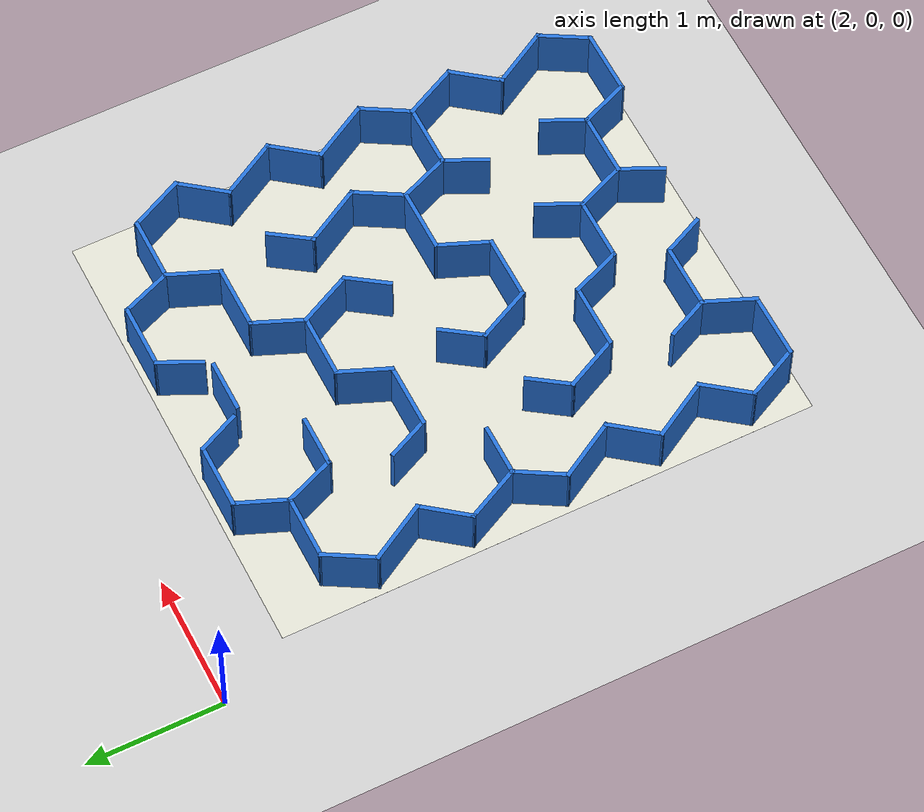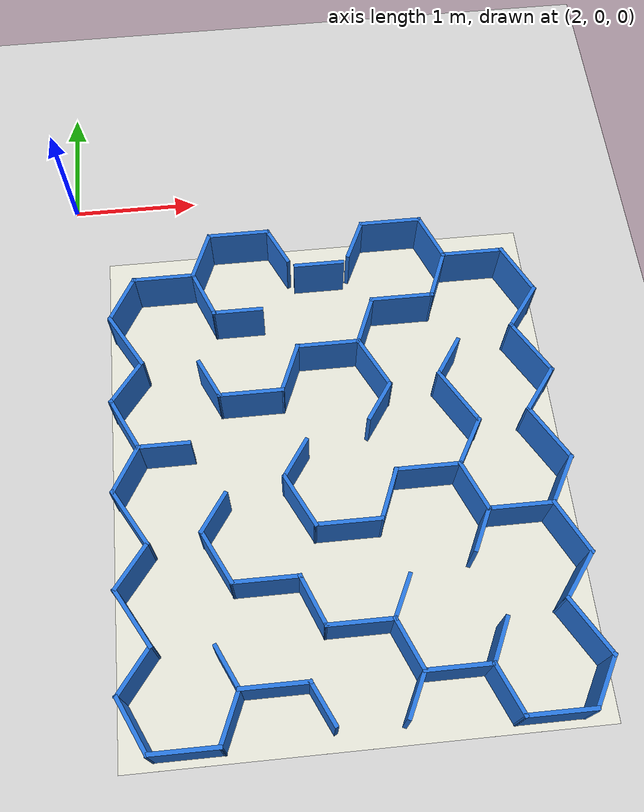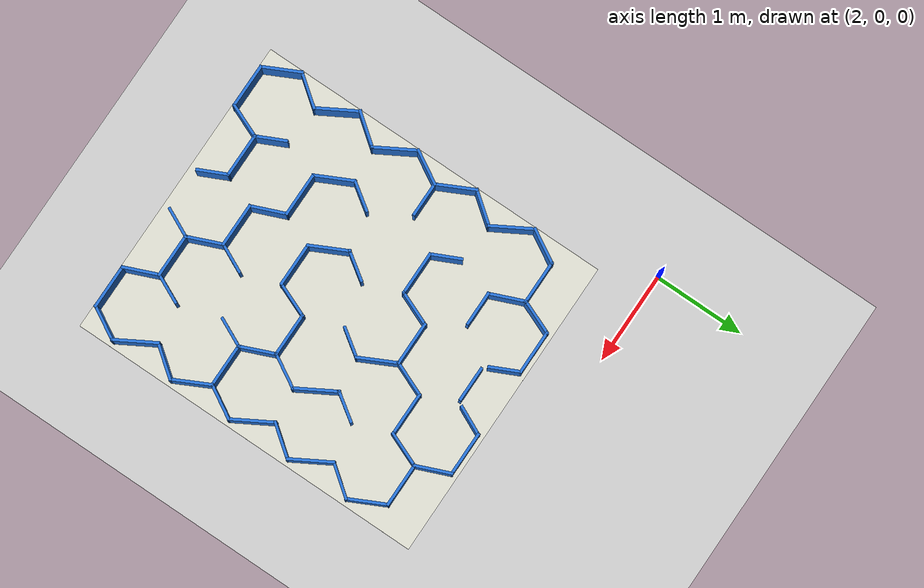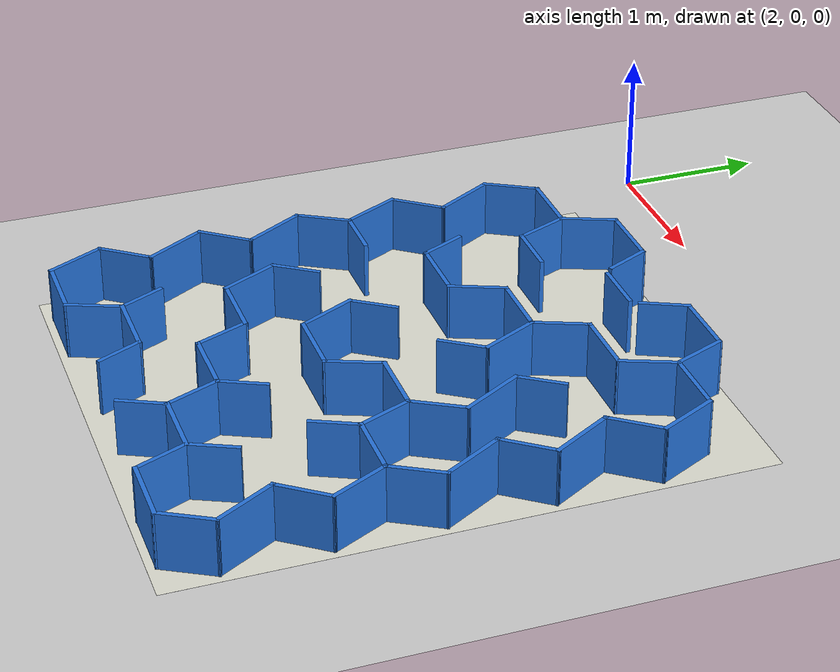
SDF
<?xml version="1.0" ?>
<sdf version="1.10">
<world name="nhom8_maze_sigma_5">
  <physics name="8ms" type="ignored">
    <max_step_size>0.008</max_step_size>
    <real_time_factor>1.0</real_time_factor>
  </physics>
  <plugin filename="gz-sim-physics-system"   name="gz::sim::systems::Physics"/>
  <plugin filename="gz-sim-user-commands-system" name="gz::sim::systems::UserCommands"/>
  <plugin filename="gz-sim-scene-broadcaster-system" name="gz::sim::systems::SceneBroadcaster"/>
  <plugin filename="gz-sim-sensors-system" name="gz::sim::systems::Sensors">
    <render_engine>ogre2</render_engine>
  </plugin>

  <light type="directional" name="sun">
    <cast_shadows>true</cast_shadows>
    <pose>0 0 10 0 0 0</pose>
    <diffuse>1 1 1 1</diffuse>
    <specular>0.5 0.5 0.5 1</specular>
    <attenuation><range>1000</range><constant>0.9</constant>
      <linear>0.01</linear><quadratic>0.001</quadratic></attenuation>
    <direction>-0.5 0.1 -0.9</direction>
  </light>

  <model name="ground_plane">
    <static>true</static>
    <link name="link">
      <collision name="collision">
        <geometry><plane><normal>0 0 1</normal><size>50.0 50.0</size></plane></geometry>
        <surface><friction><ode><mu>40</mu></ode></friction></surface>
      </collision>
      <visual name="visual">
        <geometry><plane><normal>0 0 1</normal><size>50.0 50.0</size></plane></geometry>
        <material>
          <ambient>0.8 0.8 0.8 1</ambient><diffuse>0.8 0.8 0.8 1</diffuse>
          <specular>0.8 0.8 0.8 1</specular>
        </material>
      </visual>
    </link>
  </model>

  <!--  MAZE sigma_5 (family sigma)                -->
  <!--  walls: 69   wall bbox (local): (-1.6466, -1.9401, 1.6477, 1.9489)   -->
  <!--  openings: entrance=north@(0.003,1.594) hw=0.168  exit=south@(0.003,-1.937) hw=0.168   -->
  <!--  start (local): (0.0034, 1.2599) yaw=-1.5722 rad  -->
  <!--  placement center: (3.9650, -2.5350)   -->

    <model name="wall_000">
      <static>true</static>
      <pose>3.355700 -0.600000 0.2000 0 0 0.000000</pose>
      <link name="link">
        <collision name="col">
          <geometry><box><size>0.4972 0.0300 0.4000</size></box></geometry>
        </collision>
        <visual name="vis">
          <geometry><box><size>0.4972 0.0300 0.4000</size></box></geometry>
          <material><ambient>0.15 0.45 0.85 1</ambient><diffuse>0.15 0.45 0.85 1</diffuse></material>
        </visual>
      </link>
    </model>

    <model name="wall_001">
      <static>true</static>
      <pose>4.574900 -0.600000 0.2000 0 0 0.000000</pose>
      <link name="link">
        <collision name="col">
          <geometry><box><size>0.4964 0.0300 0.4000</size></box></geometry>
        </collision>
        <visual name="vis">
          <geometry><box><size>0.4964 0.0300 0.4000</size></box></geometry>
          <material><ambient>0.15 0.45 0.85 1</ambient><diffuse>0.15 0.45 0.85 1</diffuse></material>
        </visual>
      </link>
    </model>

    <model name="wall_002">
      <static>true</static>
      <pose>2.748250 -0.950200 0.2000 0 0 0.000000</pose>
      <link name="link">
        <collision name="col">
          <geometry><box><size>0.4921 0.0300 0.4000</size></box></geometry>
        </collision>
        <visual name="vis">
          <geometry><box><size>0.4921 0.0300 0.4000</size></box></geometry>
          <material><ambient>0.15 0.45 0.85 1</ambient><diffuse>0.15 0.45 0.85 1</diffuse></material>
        </visual>
      </link>
    </model>

    <model name="wall_003">
      <static>true</static>
      <pose>5.183450 -0.950200 0.2000 0 0 0.000000</pose>
      <link name="link">
        <collision name="col">
          <geometry><box><size>0.4949 0.0300 0.4000</size></box></geometry>
        </collision>
        <visual name="vis">
          <geometry><box><size>0.4949 0.0300 0.4000</size></box></geometry>
          <material><ambient>0.15 0.45 0.85 1</ambient><diffuse>0.15 0.45 0.85 1</diffuse></material>
        </visual>
      </link>
    </model>

    <model name="wall_004">
      <static>true</static>
      <pose>3.304900 -1.302500 0.2000 0 0 0.000000</pose>
      <link name="link">
        <collision name="col">
          <geometry><box><size>0.3920 0.0300 0.4000</size></box></geometry>
        </collision>
        <visual name="vis">
          <geometry><box><size>0.3920 0.0300 0.4000</size></box></geometry>
          <material><ambient>0.15 0.45 0.85 1</ambient><diffuse>0.15 0.45 0.85 1</diffuse></material>
        </visual>
      </link>
    </model>

    <model name="wall_005">
      <static>true</static>
      <pose>4.574550 -1.302500 0.2000 0 0 0.000000</pose>
      <link name="link">
        <collision name="col">
          <geometry><box><size>0.4949 0.0300 0.4000</size></box></geometry>
        </collision>
        <visual name="vis">
          <geometry><box><size>0.4949 0.0300 0.4000</size></box></geometry>
          <material><ambient>0.15 0.45 0.85 1</ambient><diffuse>0.15 0.45 0.85 1</diffuse></material>
        </visual>
      </link>
    </model>

    <model name="wall_006">
      <static>true</static>
      <pose>3.964850 -1.651900 0.2000 0 0 0.000000</pose>
      <link name="link">
        <collision name="col">
          <geometry><box><size>0.4937 0.0300 0.4000</size></box></geometry>
        </collision>
        <visual name="vis">
          <geometry><box><size>0.4937 0.0300 0.4000</size></box></geometry>
          <material><ambient>0.15 0.45 0.85 1</ambient><diffuse>0.15 0.45 0.85 1</diffuse></material>
        </visual>
      </link>
    </model>

    <model name="wall_007">
      <static>true</static>
      <pose>3.355600 -2.002800 0.2000 0 0 0.000000</pose>
      <link name="link">
        <collision name="col">
          <geometry><box><size>0.4956 0.0300 0.4000</size></box></geometry>
        </collision>
        <visual name="vis">
          <geometry><box><size>0.4956 0.0300 0.4000</size></box></geometry>
          <material><ambient>0.15 0.45 0.85 1</ambient><diffuse>0.15 0.45 0.85 1</diffuse></material>
        </visual>
      </link>
    </model>

    <model name="wall_008">
      <static>true</static>
      <pose>2.698800 -2.358000 0.2000 0 0 0.000000</pose>
      <link name="link">
        <collision name="col">
          <geometry><box><size>0.3950 0.0300 0.4000</size></box></geometry>
        </collision>
        <visual name="vis">
          <geometry><box><size>0.3950 0.0300 0.4000</size></box></geometry>
          <material><ambient>0.15 0.45 0.85 1</ambient><diffuse>0.15 0.45 0.85 1</diffuse></material>
        </visual>
      </link>
    </model>

    <model name="wall_009">
      <static>true</static>
      <pose>4.573700 -2.707000 0.2000 0 0 0.000000</pose>
      <link name="link">
        <collision name="col">
          <geometry><box><size>0.4922 0.0300 0.4000</size></box></geometry>
        </collision>
        <visual name="vis">
          <geometry><box><size>0.4922 0.0300 0.4000</size></box></geometry>
          <material><ambient>0.15 0.45 0.85 1</ambient><diffuse>0.15 0.45 0.85 1</diffuse></material>
        </visual>
      </link>
    </model>

    <model name="wall_010">
      <static>true</static>
      <pose>3.965400 -3.059000 0.2000 0 0 0.000000</pose>
      <link name="link">
        <collision name="col">
          <geometry><box><size>0.4952 0.0300 0.4000</size></box></geometry>
        </collision>
        <visual name="vis">
          <geometry><box><size>0.4952 0.0300 0.4000</size></box></geometry>
          <material><ambient>0.15 0.45 0.85 1</ambient><diffuse>0.15 0.45 0.85 1</diffuse></material>
        </visual>
      </link>
    </model>

    <model name="wall_011">
      <static>true</static>
      <pose>5.182700 -3.059000 0.2000 0 0 0.000000</pose>
      <link name="link">
        <collision name="col">
          <geometry><box><size>0.4930 0.0300 0.4000</size></box></geometry>
        </collision>
        <visual name="vis">
          <geometry><box><size>0.4930 0.0300 0.4000</size></box></geometry>
          <material><ambient>0.15 0.45 0.85 1</ambient><diffuse>0.15 0.45 0.85 1</diffuse></material>
        </visual>
      </link>
    </model>

    <model name="wall_012">
      <static>true</static>
      <pose>3.355800 -3.410500 0.2000 0 0 0.000000</pose>
      <link name="link">
        <collision name="col">
          <geometry><box><size>0.4974 0.0300 0.4000</size></box></geometry>
        </collision>
        <visual name="vis">
          <geometry><box><size>0.4974 0.0300 0.4000</size></box></geometry>
          <material><ambient>0.15 0.45 0.85 1</ambient><diffuse>0.15 0.45 0.85 1</diffuse></material>
        </visual>
      </link>
    </model>

    <model name="wall_013">
      <static>true</static>
      <pose>3.964300 -3.760400 0.2000 0 0 0.000000</pose>
      <link name="link">
        <collision name="col">
          <geometry><box><size>0.4942 0.0300 0.4000</size></box></geometry>
        </collision>
        <visual name="vis">
          <geometry><box><size>0.4942 0.0300 0.4000</size></box></geometry>
          <material><ambient>0.15 0.45 0.85 1</ambient><diffuse>0.15 0.45 0.85 1</diffuse></material>
        </visual>
      </link>
    </model>

    <model name="wall_014">
      <static>true</static>
      <pose>3.358400 -4.115400 0.2000 0 0 0.000000</pose>
      <link name="link">
        <collision name="col">
          <geometry><box><size>0.4962 0.0300 0.4000</size></box></geometry>
        </collision>
        <visual name="vis">
          <geometry><box><size>0.4962 0.0300 0.4000</size></box></geometry>
          <material><ambient>0.15 0.45 0.85 1</ambient><diffuse>0.15 0.45 0.85 1</diffuse></material>
        </visual>
      </link>
    </model>

    <model name="wall_015">
      <static>true</static>
      <pose>4.574300 -4.115400 0.2000 0 0 0.000000</pose>
      <link name="link">
        <collision name="col">
          <geometry><box><size>0.4916 0.0300 0.4000</size></box></geometry>
        </collision>
        <visual name="vis">
          <geometry><box><size>0.4916 0.0300 0.4000</size></box></geometry>
          <material><ambient>0.15 0.45 0.85 1</ambient><diffuse>0.15 0.45 0.85 1</diffuse></material>
        </visual>
      </link>
    </model>

    <model name="wall_016">
      <static>true</static>
      <pose>2.747550 -4.461300 0.2000 0 0 0.000000</pose>
      <link name="link">
        <collision name="col">
          <geometry><box><size>0.4991 0.0300 0.4000</size></box></geometry>
        </collision>
        <visual name="vis">
          <geometry><box><size>0.4991 0.0300 0.4000</size></box></geometry>
          <material><ambient>0.15 0.45 0.85 1</ambient><diffuse>0.15 0.45 0.85 1</diffuse></material>
        </visual>
      </link>
    </model>

    <model name="wall_017">
      <static>true</static>
      <pose>5.182700 -4.461300 0.2000 0 0 0.000000</pose>
      <link name="link">
        <collision name="col">
          <geometry><box><size>0.4992 0.0300 0.4000</size></box></geometry>
        </collision>
        <visual name="vis">
          <geometry><box><size>0.4992 0.0300 0.4000</size></box></geometry>
          <material><ambient>0.15 0.45 0.85 1</ambient><diffuse>0.15 0.45 0.85 1</diffuse></material>
        </visual>
      </link>
    </model>

    <model name="wall_018">
      <static>true</static>
      <pose>5.509000 -1.138700 0.2000 0 0 -1.112114</pose>
      <link name="link">
        <collision name="col">
          <geometry><box><size>0.4503 0.0300 0.4000</size></box></geometry>
        </collision>
        <visual name="vis">
          <geometry><box><size>0.4503 0.0300 0.4000</size></box></geometry>
          <material><ambient>0.15 0.45 0.85 1</ambient><diffuse>0.15 0.45 0.85 1</diffuse></material>
        </visual>
      </link>
    </model>

    <model name="wall_019">
      <static>true</static>
      <pose>4.879550 -0.775100 0.2000 0 0 -1.183240</pose>
      <link name="link">
        <collision name="col">
          <geometry><box><size>0.4083 0.0300 0.4000</size></box></geometry>
        </collision>
        <visual name="vis">
          <geometry><box><size>0.4083 0.0300 0.4000</size></box></geometry>
          <material><ambient>0.15 0.45 0.85 1</ambient><diffuse>0.15 0.45 0.85 1</diffuse></material>
        </visual>
      </link>
    </model>

    <model name="wall_020">
      <static>true</static>
      <pose>5.486900 -1.828950 0.2000 0 0 -1.047213</pose>
      <link name="link">
        <collision name="col">
          <geometry><box><size>0.4920 0.0300 0.4000</size></box></geometry>
        </collision>
        <visual name="vis">
          <geometry><box><size>0.4920 0.0300 0.4000</size></box></geometry>
          <material><ambient>0.15 0.45 0.85 1</ambient><diffuse>0.15 0.45 0.85 1</diffuse></material>
        </visual>
      </link>
    </model>

    <model name="wall_021">
      <static>true</static>
      <pose>5.487400 -2.532000 0.2000 0 0 -1.047235</pose>
      <link name="link">
        <collision name="col">
          <geometry><box><size>0.4944 0.0300 0.4000</size></box></geometry>
        </collision>
        <visual name="vis">
          <geometry><box><size>0.4944 0.0300 0.4000</size></box></geometry>
          <material><ambient>0.15 0.45 0.85 1</ambient><diffuse>0.15 0.45 0.85 1</diffuse></material>
        </visual>
      </link>
    </model>

    <model name="wall_022">
      <static>true</static>
      <pose>4.878250 -2.180450 0.2000 0 0 -1.047186</pose>
      <link name="link">
        <collision name="col">
          <geometry><box><size>0.4918 0.0300 0.4000</size></box></geometry>
        </collision>
        <visual name="vis">
          <geometry><box><size>0.4918 0.0300 0.4000</size></box></geometry>
          <material><ambient>0.15 0.45 0.85 1</ambient><diffuse>0.15 0.45 0.85 1</diffuse></material>
        </visual>
      </link>
    </model>

    <model name="wall_023">
      <static>true</static>
      <pose>5.508900 -3.247700 0.2000 0 0 -1.105764</pose>
      <link name="link">
        <collision name="col">
          <geometry><box><size>0.4522 0.0300 0.4000</size></box></geometry>
        </collision>
        <visual name="vis">
          <geometry><box><size>0.4522 0.0300 0.4000</size></box></geometry>
          <material><ambient>0.15 0.45 0.85 1</ambient><diffuse>0.15 0.45 0.85 1</diffuse></material>
        </visual>
      </link>
    </model>

    <model name="wall_024">
      <static>true</static>
      <pose>3.657400 -0.743500 0.2000 0 0 -1.127738</pose>
      <link name="link">
        <collision name="col">
          <geometry><box><size>0.3476 0.0300 0.4000</size></box></geometry>
        </collision>
        <visual name="vis">
          <geometry><box><size>0.3476 0.0300 0.4000</size></box></geometry>
          <material><ambient>0.15 0.45 0.85 1</ambient><diffuse>0.15 0.45 0.85 1</diffuse></material>
        </visual>
      </link>
    </model>

    <model name="wall_025">
      <static>true</static>
      <pose>4.291150 -1.840950 0.2000 0 0 -1.107445</pose>
      <link name="link">
        <collision name="col">
          <geometry><box><size>0.4526 0.0300 0.4000</size></box></geometry>
        </collision>
        <visual name="vis">
          <geometry><box><size>0.4526 0.0300 0.4000</size></box></geometry>
          <material><ambient>0.15 0.45 0.85 1</ambient><diffuse>0.15 0.45 0.85 1</diffuse></material>
        </visual>
      </link>
    </model>

    <model name="wall_026">
      <static>true</static>
      <pose>4.878050 -2.883000 0.2000 0 0 -1.176604</pose>
      <link name="link">
        <collision name="col">
          <geometry><box><size>0.4111 0.0300 0.4000</size></box></geometry>
        </collision>
        <visual name="vis">
          <geometry><box><size>0.4111 0.0300 0.4000</size></box></geometry>
          <material><ambient>0.15 0.45 0.85 1</ambient><diffuse>0.15 0.45 0.85 1</diffuse></material>
        </visual>
      </link>
    </model>

    <model name="wall_027">
      <static>true</static>
      <pose>5.487050 -3.938000 0.2000 0 0 -1.047273</pose>
      <link name="link">
        <collision name="col">
          <geometry><box><size>0.4903 0.0300 0.4000</size></box></geometry>
        </collision>
        <visual name="vis">
          <geometry><box><size>0.4903 0.0300 0.4000</size></box></geometry>
          <material><ambient>0.15 0.45 0.85 1</ambient><diffuse>0.15 0.45 0.85 1</diffuse></material>
        </visual>
      </link>
    </model>

    <model name="wall_028">
      <static>true</static>
      <pose>3.051600 -1.126350 0.2000 0 0 -1.181341</pose>
      <link name="link">
        <collision name="col">
          <geometry><box><size>0.4109 0.0300 0.4000</size></box></geometry>
        </collision>
        <visual name="vis">
          <geometry><box><size>0.4109 0.0300 0.4000</size></box></geometry>
          <material><ambient>0.15 0.45 0.85 1</ambient><diffuse>0.15 0.45 0.85 1</diffuse></material>
        </visual>
      </link>
    </model>

    <model name="wall_029">
      <static>true</static>
      <pose>4.876550 -4.288350 0.2000 0 0 -1.178574</pose>
      <link name="link">
        <collision name="col">
          <geometry><box><size>0.4042 0.0300 0.4000</size></box></geometry>
        </collision>
        <visual name="vis">
          <geometry><box><size>0.4042 0.0300 0.4000</size></box></geometry>
          <material><ambient>0.15 0.45 0.85 1</ambient><diffuse>0.15 0.45 0.85 1</diffuse></material>
        </visual>
      </link>
    </model>

    <model name="wall_030">
      <static>true</static>
      <pose>3.054900 -1.858700 0.2000 0 0 -1.130251</pose>
      <link name="link">
        <collision name="col">
          <geometry><box><size>0.3485 0.0300 0.4000</size></box></geometry>
        </collision>
        <visual name="vis">
          <geometry><box><size>0.3485 0.0300 0.4000</size></box></geometry>
          <material><ambient>0.15 0.45 0.85 1</ambient><diffuse>0.15 0.45 0.85 1</diffuse></material>
        </visual>
      </link>
    </model>

    <model name="wall_031">
      <static>true</static>
      <pose>3.639150 -2.870600 0.2000 0 0 -1.109729</pose>
      <link name="link">
        <collision name="col">
          <geometry><box><size>0.4507 0.0300 0.4000</size></box></geometry>
        </collision>
        <visual name="vis">
          <geometry><box><size>0.4507 0.0300 0.4000</size></box></geometry>
          <material><ambient>0.15 0.45 0.85 1</ambient><diffuse>0.15 0.45 0.85 1</diffuse></material>
        </visual>
      </link>
    </model>

    <model name="wall_032">
      <static>true</static>
      <pose>4.269900 -3.937950 0.2000 0 0 -1.177918</pose>
      <link name="link">
        <collision name="col">
          <geometry><box><size>0.4143 0.0300 0.4000</size></box></geometry>
        </collision>
        <visual name="vis">
          <geometry><box><size>0.4143 0.0300 0.4000</size></box></geometry>
          <material><ambient>0.15 0.45 0.85 1</ambient><diffuse>0.15 0.45 0.85 1</diffuse></material>
        </visual>
      </link>
    </model>

    <model name="wall_033">
      <static>true</static>
      <pose>2.444000 -1.478350 0.2000 0 0 -1.047159</pose>
      <link name="link">
        <collision name="col">
          <geometry><box><size>0.4916 0.0300 0.4000</size></box></geometry>
        </collision>
        <visual name="vis">
          <geometry><box><size>0.4916 0.0300 0.4000</size></box></geometry>
          <material><ambient>0.15 0.45 0.85 1</ambient><diffuse>0.15 0.45 0.85 1</diffuse></material>
        </visual>
      </link>
    </model>

    <model name="wall_034">
      <static>true</static>
      <pose>3.660850 -3.585450 0.2000 0 0 -1.183870</pose>
      <link name="link">
        <collision name="col">
          <geometry><box><size>0.4079 0.0300 0.4000</size></box></geometry>
        </collision>
        <visual name="vis">
          <geometry><box><size>0.4079 0.0300 0.4000</size></box></geometry>
          <material><ambient>0.15 0.45 0.85 1</ambient><diffuse>0.15 0.45 0.85 1</diffuse></material>
        </visual>
      </link>
    </model>

    <model name="wall_035">
      <static>true</static>
      <pose>2.421900 -2.168550 0.2000 0 0 -1.108826</pose>
      <link name="link">
        <collision name="col">
          <geometry><box><size>0.4532 0.0300 0.4000</size></box></geometry>
        </collision>
        <visual name="vis">
          <geometry><box><size>0.4532 0.0300 0.4000</size></box></geometry>
          <material><ambient>0.15 0.45 0.85 1</ambient><diffuse>0.15 0.45 0.85 1</diffuse></material>
        </visual>
      </link>
    </model>

    <model name="wall_036">
      <static>true</static>
      <pose>3.029050 -3.221850 0.2000 0 0 -1.112210</pose>
      <link name="link">
        <collision name="col">
          <geometry><box><size>0.4507 0.0300 0.4000</size></box></geometry>
        </collision>
        <visual name="vis">
          <geometry><box><size>0.4507 0.0300 0.4000</size></box></geometry>
          <material><ambient>0.15 0.45 0.85 1</ambient><diffuse>0.15 0.45 0.85 1</diffuse></material>
        </visual>
      </link>
    </model>

    <model name="wall_037">
      <static>true</static>
      <pose>3.659100 -4.258850 0.2000 0 0 -1.130463</pose>
      <link name="link">
        <collision name="col">
          <geometry><box><size>0.3472 0.0300 0.4000</size></box></geometry>
        </collision>
        <visual name="vis">
          <geometry><box><size>0.3472 0.0300 0.4000</size></box></geometry>
          <material><ambient>0.15 0.45 0.85 1</ambient><diffuse>0.15 0.45 0.85 1</diffuse></material>
        </visual>
      </link>
    </model>

    <model name="wall_038">
      <static>true</static>
      <pose>2.443200 -2.883100 0.2000 0 0 -1.047072</pose>
      <link name="link">
        <collision name="col">
          <geometry><box><size>0.4931 0.0300 0.4000</size></box></geometry>
        </collision>
        <visual name="vis">
          <geometry><box><size>0.4931 0.0300 0.4000</size></box></geometry>
          <material><ambient>0.15 0.45 0.85 1</ambient><diffuse>0.15 0.45 0.85 1</diffuse></material>
        </visual>
      </link>
    </model>

    <model name="wall_039">
      <static>true</static>
      <pose>3.056150 -3.970300 0.2000 0 0 -1.126487</pose>
      <link name="link">
        <collision name="col">
          <geometry><box><size>0.3515 0.0300 0.4000</size></box></geometry>
        </collision>
        <visual name="vis">
          <geometry><box><size>0.3515 0.0300 0.4000</size></box></geometry>
          <material><ambient>0.15 0.45 0.85 1</ambient><diffuse>0.15 0.45 0.85 1</diffuse></material>
        </visual>
      </link>
    </model>

    <model name="wall_040">
      <static>true</static>
      <pose>2.443150 -3.585750 0.2000 0 0 -1.047241</pose>
      <link name="link">
        <collision name="col">
          <geometry><box><size>0.4922 0.0300 0.4000</size></box></geometry>
        </collision>
        <visual name="vis">
          <geometry><box><size>0.4922 0.0300 0.4000</size></box></geometry>
          <material><ambient>0.15 0.45 0.85 1</ambient><diffuse>0.15 0.45 0.85 1</diffuse></material>
        </visual>
      </link>
    </model>

    <model name="wall_041">
      <static>true</static>
      <pose>2.420950 -4.274850 0.2000 0 0 -1.112266</pose>
      <link name="link">
        <collision name="col">
          <geometry><box><size>0.4457 0.0300 0.4000</size></box></geometry>
        </collision>
        <visual name="vis">
          <geometry><box><size>0.4457 0.0300 0.4000</size></box></geometry>
          <material><ambient>0.15 0.45 0.85 1</ambient><diffuse>0.15 0.45 0.85 1</diffuse></material>
        </visual>
      </link>
    </model>

    <model name="wall_042">
      <static>true</static>
      <pose>5.509700 -4.299250 0.2000 0 0 1.052635</pose>
      <link name="link">
        <collision name="col">
          <geometry><box><size>0.4030 0.0300 0.4000</size></box></geometry>
        </collision>
        <visual name="vis">
          <geometry><box><size>0.4030 0.0300 0.4000</size></box></geometry>
          <material><ambient>0.15 0.45 0.85 1</ambient><diffuse>0.15 0.45 0.85 1</diffuse></material>
        </visual>
      </link>
    </model>

    <model name="wall_043">
      <static>true</static>
      <pose>5.487750 -3.587550 0.2000 0 0 0.916926</pose>
      <link name="link">
        <collision name="col">
          <geometry><box><size>0.4108 0.0300 0.4000</size></box></geometry>
        </collision>
        <visual name="vis">
          <geometry><box><size>0.4108 0.0300 0.4000</size></box></geometry>
          <material><ambient>0.15 0.45 0.85 1</ambient><diffuse>0.15 0.45 0.85 1</diffuse></material>
        </visual>
      </link>
    </model>

    <model name="wall_044">
      <static>true</static>
      <pose>5.508850 -2.896050 0.2000 0 0 1.044367</pose>
      <link name="link">
        <collision name="col">
          <geometry><box><size>0.4070 0.0300 0.4000</size></box></geometry>
        </collision>
        <visual name="vis">
          <geometry><box><size>0.4070 0.0300 0.4000</size></box></geometry>
          <material><ambient>0.15 0.45 0.85 1</ambient><diffuse>0.15 0.45 0.85 1</diffuse></material>
        </visual>
      </link>
    </model>

    <model name="wall_045">
      <static>true</static>
      <pose>4.874050 -3.970350 0.2000 0 0 1.126879</pose>
      <link name="link">
        <collision name="col">
          <geometry><box><size>0.3514 0.0300 0.4000</size></box></geometry>
        </collision>
        <visual name="vis">
          <geometry><box><size>0.3514 0.0300 0.4000</size></box></geometry>
          <material><ambient>0.15 0.45 0.85 1</ambient><diffuse>0.15 0.45 0.85 1</diffuse></material>
        </visual>
      </link>
    </model>

    <model name="wall_046">
      <static>true</static>
      <pose>5.486900 -2.179950 0.2000 0 0 0.917300</pose>
      <link name="link">
        <collision name="col">
          <geometry><box><size>0.4102 0.0300 0.4000</size></box></geometry>
        </collision>
        <visual name="vis">
          <geometry><box><size>0.4102 0.0300 0.4000</size></box></geometry>
          <material><ambient>0.15 0.45 0.85 1</ambient><diffuse>0.15 0.45 0.85 1</diffuse></material>
        </visual>
      </link>
    </model>

    <model name="wall_047">
      <static>true</static>
      <pose>4.882400 -3.203050 0.2000 0 0 1.124949</pose>
      <link name="link">
        <collision name="col">
          <geometry><box><size>0.3492 0.0300 0.4000</size></box></geometry>
        </collision>
        <visual name="vis">
          <geometry><box><size>0.3492 0.0300 0.4000</size></box></geometry>
          <material><ambient>0.15 0.45 0.85 1</ambient><diffuse>0.15 0.45 0.85 1</diffuse></material>
        </visual>
      </link>
    </model>

    <model name="wall_048">
      <static>true</static>
      <pose>4.273800 -4.259100 0.2000 0 0 1.118922</pose>
      <link name="link">
        <collision name="col">
          <geometry><box><size>0.3495 0.0300 0.4000</size></box></geometry>
        </collision>
        <visual name="vis">
          <geometry><box><size>0.3495 0.0300 0.4000</size></box></geometry>
          <material><ambient>0.15 0.45 0.85 1</ambient><diffuse>0.15 0.45 0.85 1</diffuse></material>
        </visual>
      </link>
    </model>

    <model name="wall_049">
      <static>true</static>
      <pose>5.486700 -1.478000 0.2000 0 0 0.918315</pose>
      <link name="link">
        <collision name="col">
          <geometry><box><size>0.4098 0.0300 0.4000</size></box></geometry>
        </collision>
        <visual name="vis">
          <geometry><box><size>0.4098 0.0300 0.4000</size></box></geometry>
          <material><ambient>0.15 0.45 0.85 1</ambient><diffuse>0.15 0.45 0.85 1</diffuse></material>
        </visual>
      </link>
    </model>

    <model name="wall_050">
      <static>true</static>
      <pose>4.899300 -2.543750 0.2000 0 0 1.046168</pose>
      <link name="link">
        <collision name="col">
          <geometry><box><size>0.4073 0.0300 0.4000</size></box></geometry>
        </collision>
        <visual name="vis">
          <geometry><box><size>0.4073 0.0300 0.4000</size></box></geometry>
          <material><ambient>0.15 0.45 0.85 1</ambient><diffuse>0.15 0.45 0.85 1</diffuse></material>
        </visual>
      </link>
    </model>

    <model name="wall_051">
      <static>true</static>
      <pose>4.265750 -3.616700 0.2000 0 0 1.121490</pose>
      <link name="link">
        <collision name="col">
          <geometry><box><size>0.3493 0.0300 0.4000</size></box></geometry>
        </collision>
        <visual name="vis">
          <geometry><box><size>0.3493 0.0300 0.4000</size></box></geometry>
          <material><ambient>0.15 0.45 0.85 1</ambient><diffuse>0.15 0.45 0.85 1</diffuse></material>
        </visual>
      </link>
    </model>

    <model name="wall_052">
      <static>true</static>
      <pose>4.853700 -1.848050 0.2000 0 0 0.969843</pose>
      <link name="link">
        <collision name="col">
          <geometry><box><size>0.3512 0.0300 0.4000</size></box></geometry>
        </collision>
        <visual name="vis">
          <geometry><box><size>0.3512 0.0300 0.4000</size></box></geometry>
          <material><ambient>0.15 0.45 0.85 1</ambient><diffuse>0.15 0.45 0.85 1</diffuse></material>
        </visual>
      </link>
    </model>

    <model name="wall_053">
      <static>true</static>
      <pose>4.270300 -2.883050 0.2000 0 0 1.180971</pose>
      <link name="link">
        <collision name="col">
          <geometry><box><size>0.4105 0.0300 0.4000</size></box></geometry>
        </collision>
        <visual name="vis">
          <geometry><box><size>0.4105 0.0300 0.4000</size></box></geometry>
          <material><ambient>0.15 0.45 0.85 1</ambient><diffuse>0.15 0.45 0.85 1</diffuse></material>
        </visual>
      </link>
    </model>

    <model name="wall_054">
      <static>true</static>
      <pose>4.879050 -1.126350 0.2000 0 0 1.182918</pose>
      <link name="link">
        <collision name="col">
          <geometry><box><size>0.4106 0.0300 0.4000</size></box></geometry>
        </collision>
        <visual name="vis">
          <geometry><box><size>0.4106 0.0300 0.4000</size></box></geometry>
          <material><ambient>0.15 0.45 0.85 1</ambient><diffuse>0.15 0.45 0.85 1</diffuse></material>
        </visual>
      </link>
    </model>

    <model name="wall_055">
      <static>true</static>
      <pose>4.294850 -2.161200 0.2000 0 0 0.965705</pose>
      <link name="link">
        <collision name="col">
          <geometry><box><size>0.3490 0.0300 0.4000</size></box></geometry>
        </collision>
        <visual name="vis">
          <geometry><box><size>0.3490 0.0300 0.4000</size></box></geometry>
          <material><ambient>0.15 0.45 0.85 1</ambient><diffuse>0.15 0.45 0.85 1</diffuse></material>
        </visual>
      </link>
    </model>

    <model name="wall_056">
      <static>true</static>
      <pose>3.053700 -4.288350 0.2000 0 0 1.178346</pose>
      <link name="link">
        <collision name="col">
          <geometry><box><size>0.4042 0.0300 0.4000</size></box></geometry>
        </collision>
        <visual name="vis">
          <geometry><box><size>0.4042 0.0300 0.4000</size></box></geometry>
          <material><ambient>0.15 0.45 0.85 1</ambient><diffuse>0.15 0.45 0.85 1</diffuse></material>
        </visual>
      </link>
    </model>

    <model name="wall_057">
      <static>true</static>
      <pose>4.269400 -1.477200 0.2000 0 0 1.176194</pose>
      <link name="link">
        <collision name="col">
          <geometry><box><size>0.4084 0.0300 0.4000</size></box></geometry>
        </collision>
        <visual name="vis">
          <geometry><box><size>0.4084 0.0300 0.4000</size></box></geometry>
          <material><ambient>0.15 0.45 0.85 1</ambient><diffuse>0.15 0.45 0.85 1</diffuse></material>
        </visual>
      </link>
    </model>

    <model name="wall_058">
      <static>true</static>
      <pose>3.636250 -2.550600 0.2000 0 0 0.967331</pose>
      <link name="link">
        <collision name="col">
          <geometry><box><size>0.3498 0.0300 0.4000</size></box></geometry>
        </collision>
        <visual name="vis">
          <geometry><box><size>0.3498 0.0300 0.4000</size></box></geometry>
          <material><ambient>0.15 0.45 0.85 1</ambient><diffuse>0.15 0.45 0.85 1</diffuse></material>
        </visual>
      </link>
    </model>

    <model name="wall_059">
      <static>true</static>
      <pose>4.273350 -0.743650 0.2000 0 0 1.126809</pose>
      <link name="link">
        <collision name="col">
          <geometry><box><size>0.3480 0.0300 0.4000</size></box></geometry>
        </collision>
        <visual name="vis">
          <geometry><box><size>0.3480 0.0300 0.4000</size></box></geometry>
          <material><ambient>0.15 0.45 0.85 1</ambient><diffuse>0.15 0.45 0.85 1</diffuse></material>
        </visual>
      </link>
    </model>

    <model name="wall_060">
      <static>true</static>
      <pose>3.660700 -1.827300 0.2000 0 0 1.179950</pose>
      <link name="link">
        <collision name="col">
          <geometry><box><size>0.4095 0.0300 0.4000</size></box></geometry>
        </collision>
        <visual name="vis">
          <geometry><box><size>0.4095 0.0300 0.4000</size></box></geometry>
          <material><ambient>0.15 0.45 0.85 1</ambient><diffuse>0.15 0.45 0.85 1</diffuse></material>
        </visual>
      </link>
    </model>

    <model name="wall_061">
      <static>true</static>
      <pose>3.026950 -2.901650 0.2000 0 0 0.965432</pose>
      <link name="link">
        <collision name="col">
          <geometry><box><size>0.3499 0.0300 0.4000</size></box></geometry>
        </collision>
        <visual name="vis">
          <geometry><box><size>0.3499 0.0300 0.4000</size></box></geometry>
          <material><ambient>0.15 0.45 0.85 1</ambient><diffuse>0.15 0.45 0.85 1</diffuse></material>
        </visual>
      </link>
    </model>

    <model name="wall_062">
      <static>true</static>
      <pose>2.443800 -3.937150 0.2000 0 0 0.921198</pose>
      <link name="link">
        <collision name="col">
          <geometry><box><size>0.4100 0.0300 0.4000</size></box></geometry>
        </collision>
        <visual name="vis">
          <geometry><box><size>0.4100 0.0300 0.4000</size></box></geometry>
          <material><ambient>0.15 0.45 0.85 1</ambient><diffuse>0.15 0.45 0.85 1</diffuse></material>
        </visual>
      </link>
    </model>

    <model name="wall_063">
      <static>true</static>
      <pose>2.443300 -3.234600 0.2000 0 0 0.917062</pose>
      <link name="link">
        <collision name="col">
          <geometry><box><size>0.4104 0.0300 0.4000</size></box></geometry>
        </collision>
        <visual name="vis">
          <geometry><box><size>0.4104 0.0300 0.4000</size></box></geometry>
          <material><ambient>0.15 0.45 0.85 1</ambient><diffuse>0.15 0.45 0.85 1</diffuse></material>
        </visual>
      </link>
    </model>

    <model name="wall_064">
      <static>true</static>
      <pose>2.421850 -2.520300 0.2000 0 0 1.043787</pose>
      <link name="link">
        <collision name="col">
          <geometry><box><size>0.4054 0.0300 0.4000</size></box></geometry>
        </collision>
        <visual name="vis">
          <geometry><box><size>0.4054 0.0300 0.4000</size></box></geometry>
          <material><ambient>0.15 0.45 0.85 1</ambient><diffuse>0.15 0.45 0.85 1</diffuse></material>
        </visual>
      </link>
    </model>

    <model name="wall_065">
      <static>true</static>
      <pose>3.050700 -0.775100 0.2000 0 0 1.183467</pose>
      <link name="link">
        <collision name="col">
          <geometry><box><size>0.4082 0.0300 0.4000</size></box></geometry>
        </collision>
        <visual name="vis">
          <geometry><box><size>0.4082 0.0300 0.4000</size></box></geometry>
          <material><ambient>0.15 0.45 0.85 1</ambient><diffuse>0.15 0.45 0.85 1</diffuse></material>
        </visual>
      </link>
    </model>

    <model name="wall_066">
      <static>true</static>
      <pose>2.443450 -1.828700 0.2000 0 0 0.914312</pose>
      <link name="link">
        <collision name="col">
          <geometry><box><size>0.4098 0.0300 0.4000</size></box></geometry>
        </collision>
        <visual name="vis">
          <geometry><box><size>0.4098 0.0300 0.4000</size></box></geometry>
          <material><ambient>0.15 0.45 0.85 1</ambient><diffuse>0.15 0.45 0.85 1</diffuse></material>
        </visual>
      </link>
    </model>

    <model name="wall_067">
      <static>true</static>
      <pose>2.422900 -1.114350 0.2000 0 0 1.049222</pose>
      <link name="link">
        <collision name="col">
          <geometry><box><size>0.4086 0.0300 0.4000</size></box></geometry>
        </collision>
        <visual name="vis">
          <geometry><box><size>0.4086 0.0300 0.4000</size></box></geometry>
          <material><ambient>0.15 0.45 0.85 1</ambient><diffuse>0.15 0.45 0.85 1</diffuse></material>
        </visual>
      </link>
    </model>

    <model name="wall_068">
      <static>true</static>
      <pose>3.967900 -0.940800 0.2000 0 0 0.000000</pose>
      <link name="link">
        <collision name="col">
          <geometry><box><size>0.3966 0.0300 0.4000</size></box></geometry>
        </collision>
        <visual name="vis">
          <geometry><box><size>0.3966 0.0300 0.4000</size></box></geometry>
          <material><ambient>0.15 0.45 0.85 1</ambient><diffuse>0.15 0.45 0.85 1</diffuse></material>
        </visual>
      </link>
    </model>

    <model name="floor">
      <static>true</static>
      <pose>3.965000 -2.535000 -0.02 0 0 0</pose>
      <link name="link">
        <collision name="col">
          <geometry><box><size>3.3943 3.9890 0.03</size></box></geometry>
        </collision>
        <visual name="vis">
          <geometry><box><size>3.3943 3.9890 0.03</size></box></geometry>
          <material><ambient>0.87 0.87 0.82 1</ambient><diffuse>0.87 0.87 0.82 1</diffuse></material>
        </visual>
      </link>
    </model>
</world>
</sdf>
